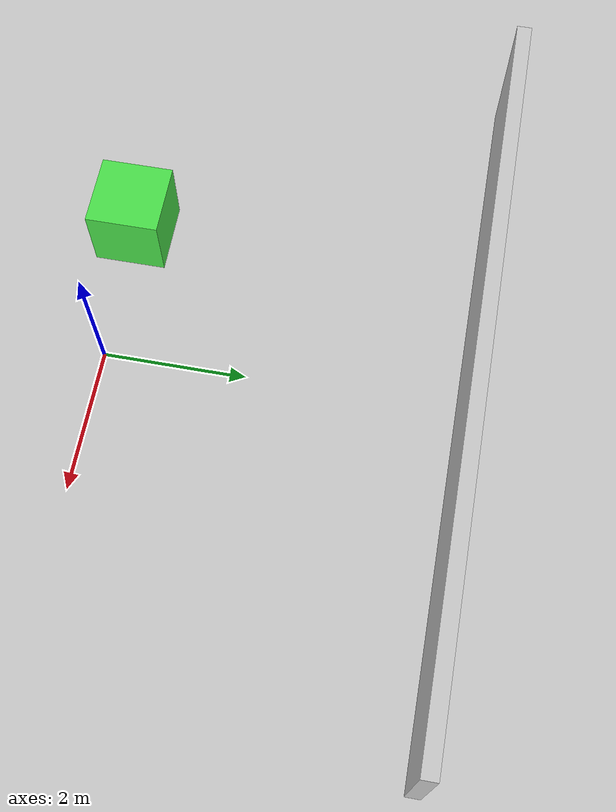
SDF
<?xml version="1.0" ?>
<sdf version="1.7">
  <world name="humanoid_world">
    <!-- Physics -->
    <physics type="ode">
      <max_step_size>0.001</max_step_size>
      <real_time_factor>1</real_time_factor>
      <real_time_update_rate>1000</real_time_update_rate>
      <ode>
        <solver>
          <type>quick</type>
          <iters>10</iters>
          <sor>1.3</sor>
        </solver>
        <constraints>
          <cfm>0.0</cfm>
          <erp>0.2</erp>
          <contact_max_correcting_vel>100.0</contact_max_correcting_vel>
          <contact_surface_layer>0.001</contact_surface_layer>
        </constraints>
      </ode>
    </physics>

    <!-- Gravity -->
    <gravity>0 0 -9.8</gravity>

    <!-- Include standard models -->
    <include>
      <uri>model://ground_plane</uri>
    </include>

    <include>
      <uri>model://sun</uri>
    </include>

    <!-- Simple room with obstacles -->
    <model name="wall_1">
      <pose>0 5 1 0 0 0</pose>
      <link name="link">
        <collision name="collision">
          <geometry>
            <box>
              <size>10 0.2 2</size>
            </box>
          </geometry>
        </collision>
        <visual name="visual">
          <geometry>
            <box>
              <size>10 0.2 2</size>
            </box>
          </geometry>
          <material>
            <ambient>0.5 0.5 0.5 1</ambient>
            <diffuse>0.8 0.8 0.8 1</diffuse>
          </material>
        </visual>
        <inertial>
          <mass>100</mass>
          <inertia>
            <ixx>1.0</ixx>
            <ixy>0.0</ixy>
            <ixz>0.0</ixz>
            <iyy>1.0</iyy>
            <iyz>0.0</iyz>
            <izz>1.0</izz>
          </inertia>
        </inertial>
      </link>
    </model>

    <!-- Simple box obstacle -->
    <model name="box_obstacle">
      <pose>-2 0 0.5 0 0 0</pose>
      <link name="link">
        <collision name="collision">
          <geometry>
            <box>
              <size>1 1 1</size>
            </box>
          </geometry>
        </collision>
        <visual name="visual">
          <geometry>
            <box>
              <size>1 1 1</size>
            </box>
          </geometry>
          <material>
            <ambient>0.2 0.8 0.2 1</ambient>
            <diffuse>0.3 0.9 0.3 1</diffuse>
          </material>
        </visual>
        <inertial>
          <mass>5</mass>
          <inertia>
            <ixx>0.1667</ixx>
            <ixy>0.0</ixy>
            <ixz>0.0</ixz>
            <iyy>0.1667</iyy>
            <iyz>0.0</iyz>
            <izz>0.1667</izz>
          </inertia>
        </inertial>
      </link>
    </model>

    <!-- Add a simple humanoid robot (will be spawned separately) -->
  </world>
</sdf>
